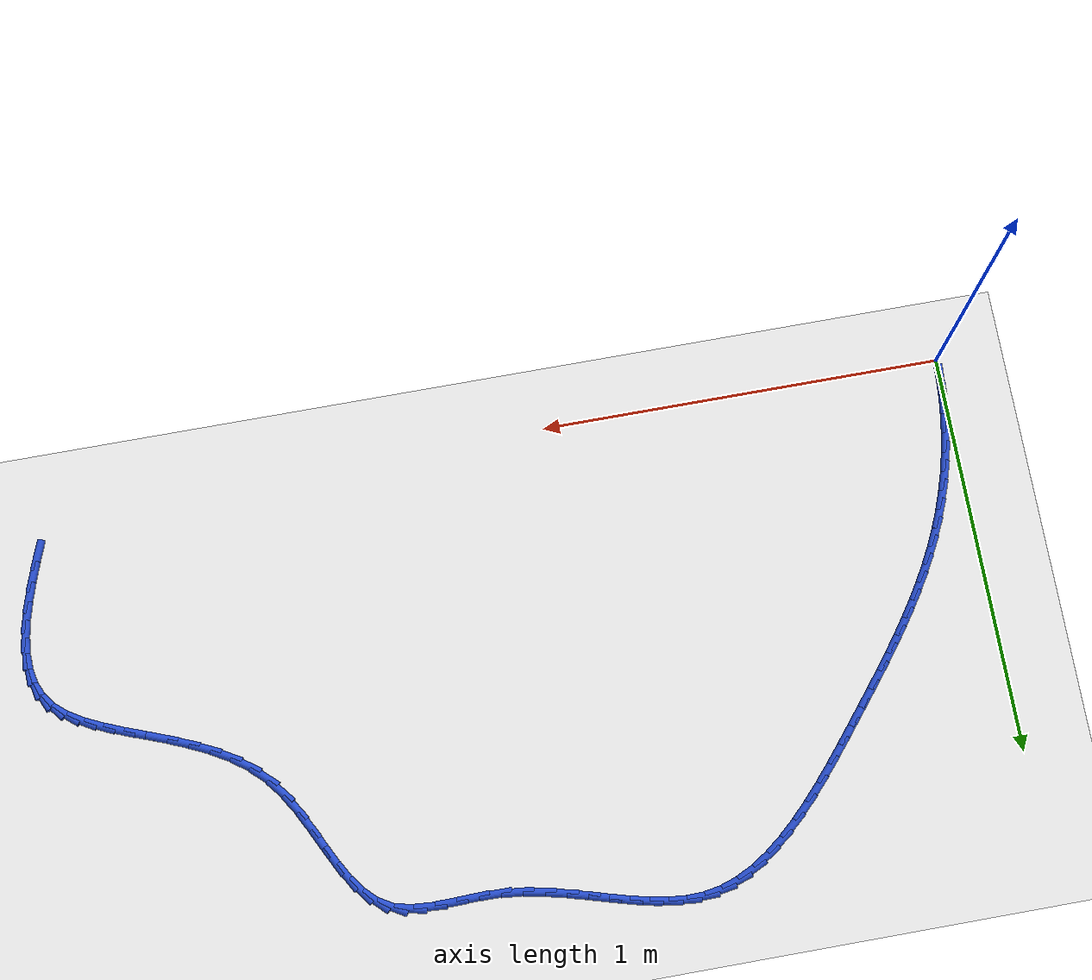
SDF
<sdf version="1.6">
 <world name="default">
  <model name="ground_plane">
   <static>1</static>
   <link name="link">
    <collision name="collision">
     <geometry><plane><normal>0 0 1</normal><size>100 100</size></plane></geometry>
     <surface><friction><ode><mu>100</mu><mu2>50</mu2></ode></friction></surface>
    </collision>
    <visual name="visual">
     <cast_shadows>0</cast_shadows>
     <geometry><plane><normal>0 0 1</normal><size>100 100</size></plane></geometry>
     <material>
      <script><uri>file://media/materials/scripts/gazebo.material</uri><name>Gazebo/WhiteGlow</name></script>
     </material>
    </visual>
   </link>
  </model>
  <model name="line">
   <link name="link_1">
    <pose>0.00164522733908944 0.05045342219584996 0.01 0 1.57 1.4889050247376745</pose>
    <collision name="collision">
     <geometry><cylinder><radius>0.01</radius><length>0.08</length></cylinder></geometry>
    </collision>
    <visual name="visual">
     <material>
      <script><name>Gazebo/Blue</name><uri>file://media/materials/scripts/gazebo.material</uri></script>
     </material>
     <geometry><cylinder><radius>0.01</radius><length>0.08</length></cylinder></geometry>
    </visual>
   </link>
   <link name="link_2">
    <pose>0.005759652638662704 0.10058357907015432 0.01 0 1.57 1.440484689456226</pose>
    <collision name="collision">
     <geometry><cylinder><radius>0.01</radius><length>0.08</length></cylinder></geometry>
    </collision>
    <visual name="visual">
     <material>
      <script><name>Gazebo/Blue</name><uri>file://media/materials/scripts/gazebo.material</uri></script>
     </material>
     <geometry><cylinder><radius>0.01</radius><length>0.08</length></cylinder></geometry>
    </visual>
   </link>
   <link name="link_3">
    <pose>0.01226964574504907 0.15025759481940254 0.01 0 1.57 1.3927698719391708</pose>
    <collision name="collision">
     <geometry><cylinder><radius>0.01</radius><length>0.08</length></cylinder></geometry>
    </collision>
    <visual name="visual">
     <material>
      <script><name>Gazebo/Blue</name><uri>file://media/materials/scripts/gazebo.material</uri></script>
     </material>
     <geometry><cylinder><radius>0.01</radius><length>0.08</length></cylinder></geometry>
    </visual>
   </link>
   <link name="link_4">
    <pose>0.021101576504577772 0.19934259364008408 0.01 0 1.57 1.3455779644179995</pose>
    <collision name="collision">
     <geometry><cylinder><radius>0.01</radius><length>0.08</length></cylinder></geometry>
    </collision>
    <visual name="visual">
     <material>
      <script><name>Gazebo/Blue</name><uri>file://media/materials/scripts/gazebo.material</uri></script>
     </material>
     <geometry><cylinder><radius>0.01</radius><length>0.08</length></cylinder></geometry>
    </visual>
   </link>
   <link name="link_5">
    <pose>0.03218181476357805 0.24770569972868833 0.01 0 1.57 1.298713417564979</pose>
    <collision name="collision">
     <geometry><cylinder><radius>0.01</radius><length>0.08</length></cylinder></geometry>
    </collision>
    <visual name="visual">
     <material>
      <script><name>Gazebo/Blue</name><uri>file://media/materials/scripts/gazebo.material</uri></script>
     </material>
     <geometry><cylinder><radius>0.01</radius><length>0.08</length></cylinder></geometry>
    </visual>
   </link>
   <link name="link_6">
    <pose>0.045436730368379155 0.2952140372817048 0.01 0 1.57 1.25196863100493</pose>
    <collision name="collision">
     <geometry><cylinder><radius>0.01</radius><length>0.08</length></cylinder></geometry>
    </collision>
    <visual name="visual">
     <material>
      <script><name>Gazebo/Blue</name><uri>file://media/materials/scripts/gazebo.material</uri></script>
     </material>
     <geometry><cylinder><radius>0.01</radius><length>0.08</length></cylinder></geometry>
    </visual>
   </link>
   <link name="link_7">
    <pose>0.060792693165310344 0.34173473049562303 0.01 0 1.57 1.2051243360913555</pose>
    <collision name="collision">
     <geometry><cylinder><radius>0.01</radius><length>0.08</length></cylinder></geometry>
    </collision>
    <visual name="visual">
     <material>
      <script><name>Gazebo/Blue</name><uri>file://media/materials/scripts/gazebo.material</uri></script>
     </material>
     <geometry><cylinder><radius>0.01</radius><length>0.08</length></cylinder></geometry>
    </visual>
   </link>
   <link name="link_8">
    <pose>0.07817607300070081 0.3871349035669322 0.01 0 1.57 1.158048484129779</pose>
    <collision name="collision">
     <geometry><cylinder><radius>0.01</radius><length>0.08</length></cylinder></geometry>
    </collision>
    <visual name="visual">
     <material>
      <script><name>Gazebo/Blue</name><uri>file://media/materials/scripts/gazebo.material</uri></script>
     </material>
     <geometry><cylinder><radius>0.01</radius><length>0.08</length></cylinder></geometry>
    </visual>
   </link>
   <link name="link_9">
    <pose>0.09751211679618497 0.4312909978084622 0.01 0 1.57 1.1124199148009029</pose>
    <collision name="collision">
     <geometry><cylinder><radius>0.01</radius><length>0.08</length></cylinder></geometry>
    </collision>
    <visual name="visual">
     <material>
      <script><name>Gazebo/Blue</name><uri>file://media/materials/scripts/gazebo.material</uri></script>
     </material>
     <geometry><cylinder><radius>0.01</radius><length>0.08</length></cylinder></geometry>
    </visual>
   </link>
   <link name="link_10">
    <pose>0.11870626003551571 0.47424383374070506 0.01 0 1.57 1.0701779051702192</pose>
    <collision name="collision">
     <geometry><cylinder><radius>0.01</radius><length>0.08</length></cylinder></geometry>
    </collision>
    <visual name="visual">
     <material>
      <script><name>Gazebo/Blue</name><uri>file://media/materials/scripts/gazebo.material</uri></script>
     </material>
     <geometry><cylinder><radius>0.01</radius><length>0.08</length></cylinder></geometry>
    </visual>
   </link>
   <link name="link_11">
    <pose>0.14164698502226902 0.5161748955927404 0.01 0 1.57 1.0318442887739931</pose>
    <collision name="collision">
     <geometry><cylinder><radius>0.01</radius><length>0.08</length></cylinder></geometry>
    </collision>
    <visual name="visual">
     <material>
      <script><name>Gazebo/Blue</name><uri>file://media/materials/scripts/gazebo.material</uri></script>
     </material>
     <geometry><cylinder><radius>0.01</radius><length>0.08</length></cylinder></geometry>
    </visual>
   </link>
   <link name="link_12">
    <pose>0.16622222714045012 0.5572702054876779 0.01 0 1.57 0.9977643349343708</pose>
    <collision name="collision">
     <geometry><cylinder><radius>0.01</radius><length>0.08</length></cylinder></geometry>
    </collision>
    <visual name="visual">
     <material>
      <script><name>Gazebo/Blue</name><uri>file://media/materials/scripts/gazebo.material</uri></script>
     </material>
     <geometry><cylinder><radius>0.01</radius><length>0.08</length></cylinder></geometry>
    </visual>
   </link>
   <link name="link_13">
    <pose>0.19231992177406415 0.5977157855486271 0.01 0 1.57 0.9681601267275276</pose>
    <collision name="collision">
     <geometry><cylinder><radius>0.01</radius><length>0.08</length></cylinder></geometry>
    </collision>
    <visual name="visual">
     <material>
      <script><name>Gazebo/Blue</name><uri>file://media/materials/scripts/gazebo.material</uri></script>
     </material>
     <geometry><cylinder><radius>0.01</radius><length>0.08</length></cylinder></geometry>
    </visual>
   </link>
   <link name="link_14">
    <pose>0.21982800430711644 0.6376976578986984 0.01 0 1.57 0.9431436747785589</pose>
    <collision name="collision">
     <geometry><cylinder><radius>0.01</radius><length>0.08</length></cylinder></geometry>
    </collision>
    <visual name="visual">
     <material>
      <script><name>Gazebo/Blue</name><uri>file://media/materials/scripts/gazebo.material</uri></script>
     </material>
     <geometry><cylinder><radius>0.01</radius><length>0.08</length></cylinder></geometry>
    </visual>
   </link>
   <link name="link_15">
    <pose>0.24863441012361204 0.6774018446610008 0.01 0 1.57 0.922734219279413</pose>
    <collision name="collision">
     <geometry><cylinder><radius>0.01</radius><length>0.08</length></cylinder></geometry>
    </collision>
    <visual name="visual">
     <material>
      <script><name>Gazebo/Blue</name><uri>file://media/materials/scripts/gazebo.material</uri></script>
     </material>
     <geometry><cylinder><radius>0.01</radius><length>0.08</length></cylinder></geometry>
    </visual>
   </link>
   <link name="link_16">
    <pose>0.27862707460755637 0.7170143679586447 0.01 0 1.57 0.9068765705767337</pose>
    <collision name="collision">
     <geometry><cylinder><radius>0.01</radius><length>0.08</length></cylinder></geometry>
    </collision>
    <visual name="visual">
     <material>
      <script><name>Gazebo/Blue</name><uri>file://media/materials/scripts/gazebo.material</uri></script>
     </material>
     <geometry><cylinder><radius>0.01</radius><length>0.08</length></cylinder></geometry>
    </visual>
   </link>
   <link name="link_17">
    <pose>0.30969393314295446 0.7567212499147394 0.01 0 1.57 0.8954582575250173</pose>
    <collision name="collision">
     <geometry><cylinder><radius>0.01</radius><length>0.08</length></cylinder></geometry>
    </collision>
    <visual name="visual">
     <material>
      <script><name>Gazebo/Blue</name><uri>file://media/materials/scripts/gazebo.material</uri></script>
     </material>
     <geometry><cylinder><radius>0.01</radius><length>0.08</length></cylinder></geometry>
    </visual>
   </link>
   <link name="link_18">
    <pose>0.3417229211138117 0.7967085126523951 0.01 0 1.57 0.8883241997426052</pose>
    <collision name="collision">
     <geometry><cylinder><radius>0.01</radius><length>0.08</length></cylinder></geometry>
    </collision>
    <visual name="visual">
     <material>
      <script><name>Gazebo/Blue</name><uri>file://media/materials/scripts/gazebo.material</uri></script>
     </material>
     <geometry><cylinder><radius>0.01</radius><length>0.08</length></cylinder></geometry>
    </visual>
   </link>
   <link name="link_19">
    <pose>0.37460197390413313 0.8371621782947213 0.01 0 1.57 0.8852015242344491</pose>
    <collision name="collision">
     <geometry><cylinder><radius>0.01</radius><length>0.08</length></cylinder></geometry>
    </collision>
    <visual name="visual">
     <material>
      <script><name>Gazebo/Blue</name><uri>file://media/materials/scripts/gazebo.material</uri></script>
     </material>
     <geometry><cylinder><radius>0.01</radius><length>0.08</length></cylinder></geometry>
    </visual>
   </link>
   <link name="link_20">
    <pose>0.4082200328626878 0.8782622125098972 0.01 0 1.57 0.8810524873996473</pose>
    <collision name="collision">
     <geometry><cylinder><radius>0.01</radius><length>0.08</length></cylinder></geometry>
    </collision>
    <visual name="visual">
     <material>
      <script><name>Gazebo/Blue</name><uri>file://media/materials/scripts/gazebo.material</uri></script>
     </material>
     <geometry><cylinder><radius>0.01</radius><length>0.08</length></cylinder></geometry>
    </visual>
   </link>
   <link name="link_21">
    <pose>0.44252290586661036 0.9198462135408749 0.01 0 1.57 0.868536293638658</pose>
    <collision name="collision">
     <geometry><cylinder><radius>0.01</radius><length>0.08</length></cylinder></geometry>
    </collision>
    <visual name="visual">
     <material>
      <script><name>Gazebo/Blue</name><uri>file://media/materials/scripts/gazebo.material</uri></script>
     </material>
     <geometry><cylinder><radius>0.01</radius><length>0.08</length></cylinder></geometry>
    </visual>
   </link>
   <link name="link_22">
    <pose>0.4775425929279206 0.9612328561066217 0.01 0 1.57 0.8468233029041009</pose>
    <collision name="collision">
     <geometry><cylinder><radius>0.01</radius><length>0.08</length></cylinder></geometry>
    </collision>
    <visual name="visual">
     <material>
      <script><name>Gazebo/Blue</name><uri>file://media/materials/scripts/gazebo.material</uri></script>
     </material>
     <geometry><cylinder><radius>0.01</radius><length>0.08</length></cylinder></geometry>
    </visual>
   </link>
   <link name="link_23">
    <pose>0.513318285007387 1.0016975215041508 0.01 0 1.57 0.8151971730808403</pose>
    <collision name="collision">
     <geometry><cylinder><radius>0.01</radius><length>0.08</length></cylinder></geometry>
    </collision>
    <visual name="visual">
     <material>
      <script><name>Gazebo/Blue</name><uri>file://media/materials/scripts/gazebo.material</uri></script>
     </material>
     <geometry><cylinder><radius>0.01</radius><length>0.08</length></cylinder></geometry>
    </visual>
   </link>
   <link name="link_24">
    <pose>0.5498891730657772 1.0405155910304742 0.01 0 1.57 0.7724213373083829</pose>
    <collision name="collision">
     <geometry><cylinder><radius>0.01</radius><length>0.08</length></cylinder></geometry>
    </collision>
    <visual name="visual">
     <material>
      <script><name>Gazebo/Blue</name><uri>file://media/materials/scripts/gazebo.material</uri></script>
     </material>
     <geometry><cylinder><radius>0.01</radius><length>0.08</length></cylinder></geometry>
    </visual>
   </link>
   <link name="link_25">
    <pose>0.5872944480638596 1.0769624459826037 0.01 0 1.57 0.7167106357839285</pose>
    <collision name="collision">
     <geometry><cylinder><radius>0.01</radius><length>0.08</length></cylinder></geometry>
    </collision>
    <visual name="visual">
     <material>
      <script><name>Gazebo/Blue</name><uri>file://media/materials/scripts/gazebo.material</uri></script>
     </material>
     <geometry><cylinder><radius>0.01</radius><length>0.08</length></cylinder></geometry>
    </visual>
   </link>
   <link name="link_26">
    <pose>0.6255733009624017 1.1103134676575528 0.01 0 1.57 0.6457321840138073</pose>
    <collision name="collision">
     <geometry><cylinder><radius>0.01</radius><length>0.08</length></cylinder></geometry>
    </collision>
    <visual name="visual">
     <material>
      <script><name>Gazebo/Blue</name><uri>file://media/materials/scripts/gazebo.material</uri></script>
     </material>
     <geometry><cylinder><radius>0.01</radius><length>0.08</length></cylinder></geometry>
    </visual>
   </link>
   <link name="link_27">
    <pose>0.6647649227221722 1.139844037352333 0.01 0 1.57 0.5567298702977895</pose>
    <collision name="collision">
     <geometry><cylinder><radius>0.01</radius><length>0.08</length></cylinder></geometry>
    </collision>
    <visual name="visual">
     <material>
      <script><name>Gazebo/Blue</name><uri>file://media/materials/scripts/gazebo.material</uri></script>
     </material>
     <geometry><cylinder><radius>0.01</radius><length>0.08</length></cylinder></geometry>
    </visual>
   </link>
   <link name="link_28">
    <pose>0.7049085043039387 1.164829536363957 0.01 0 1.57 0.44694956282326354</pose>
    <collision name="collision">
     <geometry><cylinder><radius>0.01</radius><length>0.08</length></cylinder></geometry>
    </collision>
    <visual name="visual">
     <material>
      <script><name>Gazebo/Blue</name><uri>file://media/materials/scripts/gazebo.material</uri></script>
     </material>
     <geometry><cylinder><radius>0.01</radius><length>0.08</length></cylinder></geometry>
    </visual>
   </link>
   <link name="link_29">
    <pose>0.7460432366684692 1.1845453459894366 0.01 0 1.57 0.3146147970580368</pose>
    <collision name="collision">
     <geometry><cylinder><radius>0.01</radius><length>0.08</length></cylinder></geometry>
    </collision>
    <visual name="visual">
     <material>
      <script><name>Gazebo/Blue</name><uri>file://media/materials/scripts/gazebo.material</uri></script>
     </material>
     <geometry><cylinder><radius>0.01</radius><length>0.08</length></cylinder></geometry>
    </visual>
   </link>
   <link name="link_30">
    <pose>0.7882083107765319 1.198266847525785 0.01 0 1.57 0.16151394588122622</pose>
    <collision name="collision">
     <geometry><cylinder><radius>0.01</radius><length>0.08</length></cylinder></geometry>
    </collision>
    <visual name="visual">
     <material>
      <script><name>Gazebo/Blue</name><uri>file://media/materials/scripts/gazebo.material</uri></script>
     </material>
     <geometry><cylinder><radius>0.01</radius><length>0.08</length></cylinder></geometry>
    </visual>
   </link>
   <link name="link_31">
    <pose>0.8314415455578255 1.2053109774898916 0.01 0 1.57 0.013582639021974452</pose>
    <collision name="collision">
     <geometry><cylinder><radius>0.01</radius><length>0.08</length></cylinder></geometry>
    </collision>
    <visual name="visual">
     <material>
      <script><name>Gazebo/Blue</name><uri>file://media/materials/scripts/gazebo.material</uri></script>
     </material>
     <geometry><cylinder><radius>0.01</radius><length>0.08</length></cylinder></geometry>
    </visual>
   </link>
   <link name="link_32">
    <pose>0.8757504445424328 1.2059128462832558 0.01 0 1.57 -0.10340564429680514</pose>
    <collision name="collision">
     <geometry><cylinder><radius>0.01</radius><length>0.08</length></cylinder></geometry>
    </collision>
    <visual name="visual">
     <material>
      <script><name>Gazebo/Blue</name><uri>file://media/materials/scripts/gazebo.material</uri></script>
     </material>
     <geometry><cylinder><radius>0.01</radius><length>0.08</length></cylinder></geometry>
    </visual>
   </link>
   <link name="link_33">
    <pose>0.9211128698527231 1.2012053247463066 0.01 0 1.57 -0.18842717048367777</pose>
    <collision name="collision">
     <geometry><cylinder><radius>0.01</radius><length>0.08</length></cylinder></geometry>
    </collision>
    <visual name="visual">
     <material>
      <script><name>Gazebo/Blue</name><uri>file://media/materials/scripts/gazebo.material</uri></script>
     </material>
     <geometry><cylinder><radius>0.01</radius><length>0.08</length></cylinder></geometry>
    </visual>
   </link>
   <link name="link_34">
    <pose>0.9675054463997397 1.1923587556032322 0.01 0 1.57 -0.2442922288382279</pose>
    <collision name="collision">
     <geometry><cylinder><radius>0.01</radius><length>0.08</length></cylinder></geometry>
    </collision>
    <visual name="visual">
     <material>
      <script><name>Gazebo/Blue</name><uri>file://media/materials/scripts/gazebo.material</uri></script>
     </material>
     <geometry><cylinder><radius>0.01</radius><length>0.08</length></cylinder></geometry>
    </visual>
   </link>
   <link name="link_35">
    <pose>1.0149047990945237 1.180543481578219 0.01 0 1.57 -0.27428211320257284</pose>
    <collision name="collision">
     <geometry><cylinder><radius>0.01</radius><length>0.08</length></cylinder></geometry>
    </collision>
    <visual name="visual">
     <material>
      <script><name>Gazebo/Blue</name><uri>file://media/materials/scripts/gazebo.material</uri></script>
     </material>
     <geometry><cylinder><radius>0.01</radius><length>0.08</length></cylinder></geometry>
    </visual>
   </link>
   <link name="link_36">
    <pose>1.0632875528481183 1.1669298453954553 0.01 0 1.57 -0.2809904153653087</pose>
    <collision name="collision">
     <geometry><cylinder><radius>0.01</radius><length>0.08</length></cylinder></geometry>
    </collision>
    <visual name="visual">
     <material>
      <script><name>Gazebo/Blue</name><uri>file://media/materials/scripts/gazebo.material</uri></script>
     </material>
     <geometry><cylinder><radius>0.01</radius><length>0.08</length></cylinder></geometry>
    </visual>
   </link>
   <link name="link_37">
    <pose>1.1126303325715656 1.152688189779128 0.01 0 1.57 -0.26600694118107526</pose>
    <collision name="collision">
     <geometry><cylinder><radius>0.01</radius><length>0.08</length></cylinder></geometry>
    </collision>
    <visual name="visual">
     <material>
      <script><name>Gazebo/Blue</name><uri>file://media/materials/scripts/gazebo.material</uri></script>
     </material>
     <geometry><cylinder><radius>0.01</radius><length>0.08</length></cylinder></geometry>
    </visual>
   </link>
   <link name="link_38">
    <pose>1.1629097631759078 1.1389888574534244 0.01 0 1.57 -0.23000433167421203</pose>
    <collision name="collision">
     <geometry><cylinder><radius>0.01</radius><length>0.08</length></cylinder></geometry>
    </collision>
    <visual name="visual">
     <material>
      <script><name>Gazebo/Blue</name><uri>file://media/materials/scripts/gazebo.material</uri></script>
     </material>
     <geometry><cylinder><radius>0.01</radius><length>0.08</length></cylinder></geometry>
    </visual>
   </link>
   <link name="link_39">
    <pose>1.2141024695721871 1.1270021911425323 0.01 0 1.57 -0.1730444830334125</pose>
    <collision name="collision">
     <geometry><cylinder><radius>0.01</radius><length>0.08</length></cylinder></geometry>
    </collision>
    <visual name="visual">
     <material>
      <script><name>Gazebo/Blue</name><uri>file://media/materials/scripts/gazebo.material</uri></script>
     </material>
     <geometry><cylinder><radius>0.01</radius><length>0.08</length></cylinder></geometry>
    </visual>
   </link>
   <link name="link_40">
    <pose>1.266185076671446 1.117898533570639 0.01 0 1.57 -0.09509266738395368</pose>
    <collision name="collision">
     <geometry><cylinder><radius>0.01</radius><length>0.08</length></cylinder></geometry>
    </collision>
    <visual name="visual">
     <material>
      <script><name>Gazebo/Blue</name><uri>file://media/materials/scripts/gazebo.material</uri></script>
     </material>
     <geometry><cylinder><radius>0.01</radius><length>0.08</length></cylinder></geometry>
    </visual>
   </link>
   <link name="link_41">
    <pose>1.319134209384727 1.1128482274619316 0.01 0 1.57 -0.009628564560574142</pose>
    <collision name="collision">
     <geometry><cylinder><radius>0.01</radius><length>0.08</length></cylinder></geometry>
    </collision>
    <visual name="visual">
     <material>
      <script><name>Gazebo/Blue</name><uri>file://media/materials/scripts/gazebo.material</uri></script>
     </material>
     <geometry><cylinder><radius>0.01</radius><length>0.08</length></cylinder></geometry>
    </visual>
   </link>
   <link name="link_42">
    <pose>1.3726979488487137 1.1123324695997892 0.01 0 1.57 0.030185073726526394</pose>
    <collision name="collision">
     <geometry><cylinder><radius>0.01</radius><length>0.08</length></cylinder></geometry>
    </collision>
    <visual name="visual">
     <material>
      <script><name>Gazebo/Blue</name><uri>file://media/materials/scripts/gazebo.material</uri></script>
     </material>
     <geometry><cylinder><radius>0.01</radius><length>0.08</length></cylinder></geometry>
    </visual>
   </link>
   <link name="link_43">
    <pose>1.4256623854616461 1.1139316907574226 0.01 0 1.57 0.01044259917137673</pose>
    <collision name="collision">
     <geometry><cylinder><radius>0.01</radius><length>0.08</length></cylinder></geometry>
    </collision>
    <visual name="visual">
     <material>
      <script><name>Gazebo/Blue</name><uri>file://media/materials/scripts/gazebo.material</uri></script>
     </material>
     <geometry><cylinder><radius>0.01</radius><length>0.08</length></cylinder></geometry>
    </visual>
   </link>
   <link name="link_44">
    <pose>1.4765605393496686 1.1144632190978578 0.01 0 1.57 -0.07835395242602636</pose>
    <collision name="collision">
     <geometry><cylinder><radius>0.01</radius><length>0.08</length></cylinder></geometry>
    </collision>
    <visual name="visual">
     <material>
      <script><name>Gazebo/Blue</name><uri>file://media/materials/scripts/gazebo.material</uri></script>
     </material>
     <geometry><cylinder><radius>0.01</radius><length>0.08</length></cylinder></geometry>
    </visual>
   </link>
   <link name="link_45">
    <pose>1.5239254294586493 1.110744379225144 0.01 0 1.57 -0.257396400774457</pose>
    <collision name="collision">
     <geometry><cylinder><radius>0.01</radius><length>0.08</length></cylinder></geometry>
    </collision>
    <visual name="visual">
     <material>
      <script><name>Gazebo/Blue</name><uri>file://media/materials/scripts/gazebo.material</uri></script>
     </material>
     <geometry><cylinder><radius>0.01</radius><length>0.08</length></cylinder></geometry>
    </visual>
   </link>
   <link name="link_46">
    <pose>1.5662900747344575 1.0995924957433307 0.01 0 1.57 -0.5290875430586806</pose>
    <collision name="collision">
     <geometry><cylinder><radius>0.01</radius><length>0.08</length></cylinder></geometry>
    </collision>
    <visual name="visual">
     <material>
      <script><name>Gazebo/Blue</name><uri>file://media/materials/scripts/gazebo.material</uri></script>
     </material>
     <geometry><cylinder><radius>0.01</radius><length>0.08</length></cylinder></geometry>
    </visual>
   </link>
   <link name="link_47">
    <pose>1.602518867879516 1.0784098114921703 0.01 0 1.57 -0.7791425349269764</pose>
    <collision name="collision">
     <geometry><cylinder><radius>0.01</radius><length>0.08</length></cylinder></geometry>
    </collision>
    <visual name="visual">
     <material>
      <script><name>Gazebo/Blue</name><uri>file://media/materials/scripts/gazebo.material</uri></script>
     </material>
     <geometry><cylinder><radius>0.01</radius><length>0.08</length></cylinder></geometry>
    </visual>
   </link>
   <link name="link_48">
    <pose>1.633370326514422 1.0479419487535897 0.01 0 1.57 -0.9524889581873364</pose>
    <collision name="collision">
     <geometry><cylinder><radius>0.01</radius><length>0.08</length></cylinder></geometry>
    </collision>
    <visual name="visual">
     <material>
      <script><name>Gazebo/Blue</name><uri>file://media/materials/scripts/gazebo.material</uri></script>
     </material>
     <geometry><cylinder><radius>0.01</radius><length>0.08</length></cylinder></geometry>
    </visual>
   </link>
   <link name="link_49">
    <pose>1.660274862442041 1.0101205113542149 0.01 0 1.57 -1.0572623724471997</pose>
    <collision name="collision">
     <geometry><cylinder><radius>0.01</radius><length>0.08</length></cylinder></geometry>
    </collision>
    <visual name="visual">
     <material>
      <script><name>Gazebo/Blue</name><uri>file://media/materials/scripts/gazebo.material</uri></script>
     </material>
     <geometry><cylinder><radius>0.01</radius><length>0.08</length></cylinder></geometry>
    </visual>
   </link>
   <link name="link_50">
    <pose>1.6846636819597736 0.9668785055079543 0.01 0 1.57 -1.1081845661702687</pose>
    <collision name="collision">
     <geometry><cylinder><radius>0.01</radius><length>0.08</length></cylinder></geometry>
    </collision>
    <visual name="visual">
     <material>
      <script><name>Gazebo/Blue</name><uri>file://media/materials/scripts/gazebo.material</uri></script>
     </material>
     <geometry><cylinder><radius>0.01</radius><length>0.08</length></cylinder></geometry>
    </visual>
   </link>
   <link name="link_51">
    <pose>1.7079679913650208 0.920148937428717 0.01 0 1.57 -1.1153178840445754</pose>
    <collision name="collision">
     <geometry><cylinder><radius>0.01</radius><length>0.08</length></cylinder></geometry>
    </collision>
    <visual name="visual">
     <material>
      <script><name>Gazebo/Blue</name><uri>file://media/materials/scripts/gazebo.material</uri></script>
     </material>
     <geometry><cylinder><radius>0.01</radius><length>0.08</length></cylinder></geometry>
    </visual>
   </link>
   <link name="link_52">
    <pose>1.7316189969551823 0.8718648133304107 0.01 0 1.57 -1.0828040066533071</pose>
    <collision name="collision">
     <geometry><cylinder><radius>0.01</radius><length>0.08</length></cylinder></geometry>
    </collision>
    <visual name="visual">
     <material>
      <script><name>Gazebo/Blue</name><uri>file://media/materials/scripts/gazebo.material</uri></script>
     </material>
     <geometry><cylinder><radius>0.01</radius><length>0.08</length></cylinder></geometry>
    </visual>
   </link>
   <link name="link_53">
    <pose>1.7570479050276584 0.8239591394269435 0.01 0 1.57 -1.0099663603229205</pose>
    <collision name="collision">
     <geometry><cylinder><radius>0.01</radius><length>0.08</length></cylinder></geometry>
    </collision>
    <visual name="visual">
     <material>
      <script><name>Gazebo/Blue</name><uri>file://media/materials/scripts/gazebo.material</uri></script>
     </material>
     <geometry><cylinder><radius>0.01</radius><length>0.08</length></cylinder></geometry>
    </visual>
   </link>
   <link name="link_54">
    <pose>1.7856859218798506 0.7783649219322237 0.01 0 1.57 -0.8931356048850871</pose>
    <collision name="collision">
     <geometry><cylinder><radius>0.01</radius><length>0.08</length></cylinder></geometry>
    </collision>
    <visual name="visual">
     <material>
      <script><name>Gazebo/Blue</name><uri>file://media/materials/scripts/gazebo.material</uri></script>
     </material>
     <geometry><cylinder><radius>0.01</radius><length>0.08</length></cylinder></geometry>
    </visual>
   </link>
   <link name="link_55">
    <pose>1.818964219756859 0.7370151309387891 0.01 0 1.57 -0.743382730152277</pose>
    <collision name="collision">
     <geometry><cylinder><radius>0.01</radius><length>0.08</length></cylinder></geometry>
    </collision>
    <visual name="visual">
     <material>
      <script><name>Gazebo/Blue</name><uri>file://media/materials/scripts/gazebo.material</uri></script>
     </material>
     <geometry><cylinder><radius>0.01</radius><length>0.08</length></cylinder></geometry>
    </visual>
   </link>
   <link name="link_56">
    <pose>1.85780777952394 0.7013057881630441 0.01 0 1.57 -0.6119482674964225</pose>
    <collision name="collision">
     <geometry><cylinder><radius>0.01</radius><length>0.08</length></cylinder></geometry>
    </collision>
    <visual name="visual">
     <material>
      <script><name>Gazebo/Blue</name><uri>file://media/materials/scripts/gazebo.material</uri></script>
     </material>
     <geometry><cylinder><radius>0.01</radius><length>0.08</length></cylinder></geometry>
    </visual>
   </link>
   <link name="link_57">
    <pose>1.90135816501194 0.6707411350210538 0.01 0 1.57 -0.5106284547234087</pose>
    <collision name="collision">
     <geometry><cylinder><radius>0.01</radius><length>0.08</length></cylinder></geometry>
    </collision>
    <visual name="visual">
     <material>
      <script><name>Gazebo/Blue</name><uri>file://media/materials/scripts/gazebo.material</uri></script>
     </material>
     <geometry><cylinder><radius>0.01</radius><length>0.08</length></cylinder></geometry>
    </visual>
   </link>
   <link name="link_58">
    <pose>1.9483643805030402 0.644409000835389 0.01 0 1.57 -0.437404965082955</pose>
    <collision name="collision">
     <geometry><cylinder><radius>0.01</radius><length>0.08</length></cylinder></geometry>
    </collision>
    <visual name="visual">
     <material>
      <script><name>Gazebo/Blue</name><uri>file://media/materials/scripts/gazebo.material</uri></script>
     </material>
     <geometry><cylinder><radius>0.01</radius><length>0.08</length></cylinder></geometry>
    </visual>
   </link>
   <link name="link_59">
    <pose>1.9975754302794226 0.6213972149286205 0.01 0 1.57 -0.38971150550244243</pose>
    <collision name="collision">
     <geometry><cylinder><radius>0.01</radius><length>0.08</length></cylinder></geometry>
    </collision>
    <visual name="visual">
     <material>
      <script><name>Gazebo/Blue</name><uri>file://media/materials/scripts/gazebo.material</uri></script>
     </material>
     <geometry><cylinder><radius>0.01</radius><length>0.08</length></cylinder></geometry>
    </visual>
   </link>
   <link name="link_60">
    <pose>2.047740318623269 0.6007936066233189 0.01 0 1.57 -0.3659103031381147</pose>
    <collision name="collision">
     <geometry><cylinder><radius>0.01</radius><length>0.08</length></cylinder></geometry>
    </collision>
    <visual name="visual">
     <material>
      <script><name>Gazebo/Blue</name><uri>file://media/materials/scripts/gazebo.material</uri></script>
     </material>
     <geometry><cylinder><radius>0.01</radius><length>0.08</length></cylinder></geometry>
    </visual>
   </link>
   <link name="link_61">
    <pose>2.0976080498167615 0.5816860052420548 0.01 0 1.57 -0.366079253160277</pose>
    <collision name="collision">
     <geometry><cylinder><radius>0.01</radius><length>0.08</length></cylinder></geometry>
    </collision>
    <visual name="visual">
     <material>
      <script><name>Gazebo/Blue</name><uri>file://media/materials/scripts/gazebo.material</uri></script>
     </material>
     <geometry><cylinder><radius>0.01</radius><length>0.08</length></cylinder></geometry>
    </visual>
   </link>
   <link name="link_62">
    <pose>2.1459276281420827 0.5631622401073987 0.01 0 1.57 -0.3926413310451618</pose>
    <collision name="collision">
     <geometry><cylinder><radius>0.01</radius><length>0.08</length></cylinder></geometry>
    </collision>
    <visual name="visual">
     <material>
      <script><name>Gazebo/Blue</name><uri>file://media/materials/scripts/gazebo.material</uri></script>
     </material>
     <geometry><cylinder><radius>0.01</radius><length>0.08</length></cylinder></geometry>
    </visual>
   </link>
   <link name="link_63">
    <pose>2.1914480578814124 0.5443101405419213 0.01 0 1.57 -0.45117580609698726</pose>
    <collision name="collision">
     <geometry><cylinder><radius>0.01</radius><length>0.08</length></cylinder></geometry>
    </collision>
    <visual name="visual">
     <material>
      <script><name>Gazebo/Blue</name><uri>file://media/materials/scripts/gazebo.material</uri></script>
     </material>
     <geometry><cylinder><radius>0.01</radius><length>0.08</length></cylinder></geometry>
    </visual>
   </link>
   <link name="link_64">
    <pose>2.2329183433169337 0.5242175358681931 0.01 0 1.57 -0.5514011608680375</pose>
    <collision name="collision">
     <geometry><cylinder><radius>0.01</radius><length>0.08</length></cylinder></geometry>
    </collision>
    <visual name="visual">
     <material>
      <script><name>Gazebo/Blue</name><uri>file://media/materials/scripts/gazebo.material</uri></script>
     </material>
     <geometry><cylinder><radius>0.01</radius><length>0.08</length></cylinder></geometry>
    </visual>
   </link>
   <link name="link_65">
    <pose>2.269087488730829 0.501972255408785 0.01 0 1.57 -0.7071474329540973</pose>
    <collision name="collision">
     <geometry><cylinder><radius>0.01</radius><length>0.08</length></cylinder></geometry>
    </collision>
    <visual name="visual">
     <material>
      <script><name>Gazebo/Blue</name><uri>file://media/materials/scripts/gazebo.material</uri></script>
     </material>
     <geometry><cylinder><radius>0.01</radius><length>0.08</length></cylinder></geometry>
    </visual>
   </link>
   <link name="link_66">
    <pose>2.298704498405279 0.47666212848626743 0.01 0 1.57 -0.9266036395273842</pose>
    <collision name="collision">
     <geometry><cylinder><radius>0.01</radius><length>0.08</length></cylinder></geometry>
    </collision>
    <visual name="visual">
     <material>
      <script><name>Gazebo/Blue</name><uri>file://media/materials/scripts/gazebo.material</uri></script>
     </material>
     <geometry><cylinder><radius>0.01</radius><length>0.08</length></cylinder></geometry>
    </visual>
   </link>
   <link name="link_67">
    <pose>2.320642708490921 0.44745328731373224 0.01 0 1.57 -1.1634513760108935</pose>
    <collision name="collision">
     <geometry><cylinder><radius>0.01</radius><length>0.08</length></cylinder></geometry>
    </collision>
    <visual name="visual">
     <material>
      <script><name>Gazebo/Blue</name><uri>file://media/materials/scripts/gazebo.material</uri></script>
     </material>
     <geometry><cylinder><radius>0.01</radius><length>0.08</length></cylinder></geometry>
    </visual>
   </link>
   <link name="link_68">
    <pose>2.3349645647713837 0.4142607527244456 0.01 0 1.57 -1.3718431645962288</pose>
    <collision name="collision">
     <geometry><cylinder><radius>0.01</radius><length>0.08</length></cylinder></geometry>
    </collision>
    <visual name="visual">
     <material>
      <script><name>Gazebo/Blue</name><uri>file://media/materials/scripts/gazebo.material</uri></script>
     </material>
     <geometry><cylinder><radius>0.01</radius><length>0.08</length></cylinder></geometry>
    </visual>
   </link>
   <link name="link_69">
    <pose>2.342393281423511 0.37741569046928014 0.01 0 1.57 -1.5392874166045165</pose>
    <collision name="collision">
     <geometry><cylinder><radius>0.01</radius><length>0.08</length></cylinder></geometry>
    </collision>
    <visual name="visual">
     <material>
      <script><name>Gazebo/Blue</name><uri>file://media/materials/scripts/gazebo.material</uri></script>
     </material>
     <geometry><cylinder><radius>0.01</radius><length>0.08</length></cylinder></geometry>
    </visual>
   </link>
   <link name="link_70">
    <pose>2.343659159987838 0.337253729845503 0.01 0 1.57 1.4745175910899624</pose>
    <collision name="collision">
     <geometry><cylinder><radius>0.01</radius><length>0.08</length></cylinder></geometry>
    </collision>
    <visual name="visual">
     <material>
      <script><name>Gazebo/Blue</name><uri>file://media/materials/scripts/gazebo.material</uri></script>
     </material>
     <geometry><cylinder><radius>0.01</radius><length>0.08</length></cylinder></geometry>
    </visual>
   </link>
   <link name="link_71">
    <pose>2.339492502004898 0.2941105001503811 0.01 0 1.57 1.3794743848728883</pose>
    <collision name="collision">
     <geometry><cylinder><radius>0.01</radius><length>0.08</length></cylinder></geometry>
    </collision>
    <visual name="visual">
     <material>
      <script><name>Gazebo/Blue</name><uri>file://media/materials/scripts/gazebo.material</uri></script>
     </material>
     <geometry><cylinder><radius>0.01</radius><length>0.08</length></cylinder></geometry>
    </visual>
   </link>
   <link name="link_72">
    <pose>2.3306236090152246 0.24832163068118232 0.01 0 1.57 1.3099133139320436</pose>
    <collision name="collision">
     <geometry><cylinder><radius>0.01</radius><length>0.08</length></cylinder></geometry>
    </collision>
    <visual name="visual">
     <material>
      <script><name>Gazebo/Blue</name><uri>file://media/materials/scripts/gazebo.material</uri></script>
     </material>
     <geometry><cylinder><radius>0.01</radius><length>0.08</length></cylinder></geometry>
    </visual>
   </link>
   <link name="link_73">
    <pose>2.317782782559352 0.2002227507351733 0.01 0 1.57 1.260024653978424</pose>
    <collision name="collision">
     <geometry><cylinder><radius>0.01</radius><length>0.08</length></cylinder></geometry>
    </collision>
    <visual name="visual">
     <material>
      <script><name>Gazebo/Blue</name><uri>file://media/materials/scripts/gazebo.material</uri></script>
     </material>
     <geometry><cylinder><radius>0.01</radius><length>0.08</length></cylinder></geometry>
    </visual>
   </link>
   <link name="link_74">
    <pose>2.301700324177814 0.15014948960962127 0.01 0 1.57 1.2256265970006008</pose>
    <collision name="collision">
     <geometry><cylinder><radius>0.01</radius><length>0.08</length></cylinder></geometry>
    </collision>
    <visual name="visual">
     <material>
      <script><name>Gazebo/Blue</name><uri>file://media/materials/scripts/gazebo.material</uri></script>
     </material>
     <geometry><cylinder><radius>0.01</radius><length>0.08</length></cylinder></geometry>
    </visual>
   </link>
   <link name="link_75">
    <pose>2.2831065354111453 0.09843747660179335 0.01 0 1.57 1.2038791691177222</pose>
    <collision name="collision">
     <geometry><cylinder><radius>0.01</radius><length>0.08</length></cylinder></geometry>
    </collision>
    <visual name="visual">
     <material>
      <script><name>Gazebo/Blue</name><uri>file://media/materials/scripts/gazebo.material</uri></script>
     </material>
     <geometry><cylinder><radius>0.01</radius><length>0.08</length></cylinder></geometry>
    </visual>
   </link>
   <link name="link_151">
    <pose>0.0016589316197762813 0.050430865095289455 0.01 0 1.57 1.5379130194651511</pose>
    <collision name="collision">
     <geometry><cylinder><radius>0.01</radius><length>0.08</length></cylinder></geometry>
    </collision>
    <visual name="visual">
     <material>
      <script><name>Gazebo/Blue</name><uri>file://media/materials/scripts/gazebo.material</uri></script>
     </material>
     <geometry><cylinder><radius>0.01</radius><length>0.08</length></cylinder></geometry>
    </visual>
   </link>
  </model>
 </world>
</sdf>
